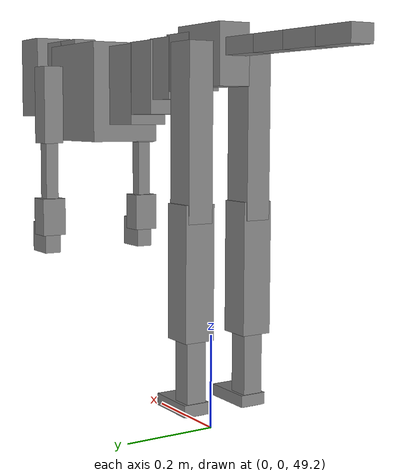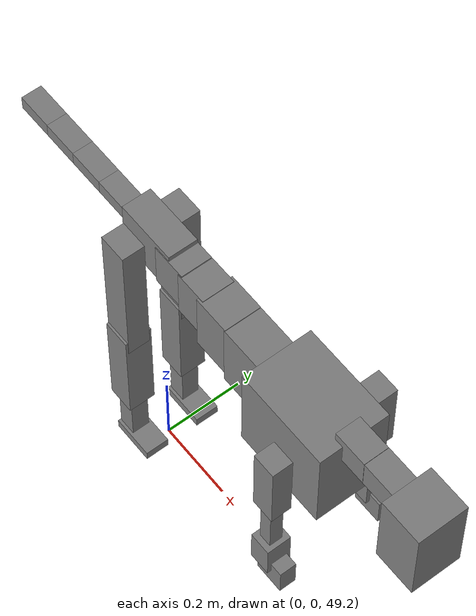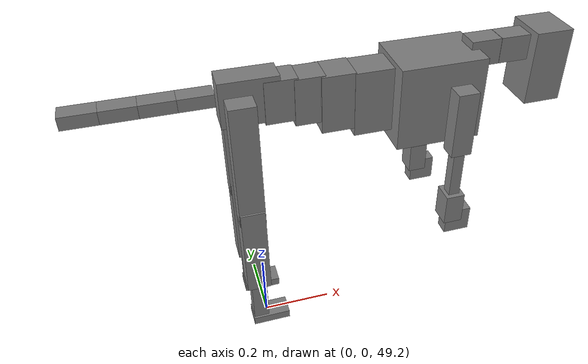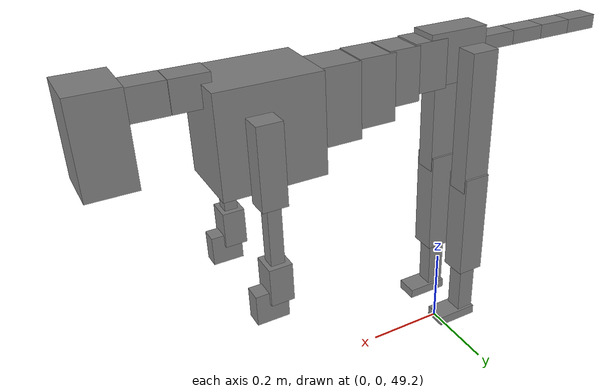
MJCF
<mujoco model="dog">

    <default>
        <joint armature="0.02" stiffness="1" damping="0.2" limited="true"/>
        <geom condim="3" friction="1 0.05 0.05" margin="0.01"/>
        <motor ctrllimited="true" ctrlrange="-1.0 1.0" forcelimited="true" gear="50"/>
    </default>

    <compiler inertiafromgeom="true" angle="radian"/>

    <option timestep="0.016" iterations="50" tolerance="1e-10" solver="Newton" jacobian="dense" cone="pyramidal"/>

    <size nconmax="20000" njmax="60000" nstack="5000000"/>
    <visual>
        <map force="0.1" zfar="30"/>
        <rgba haze="0.15 0.25 0.35 1"/>
        <quality shadowsize="2048"/>
        <global offwidth="800" offheight="800"/>
    </visual>

    <asset>
        <texture type="skybox" builtin="gradient" rgb1="0.3 0.5 0.7" rgb2="0 0 0" width="512" height="512"/>
        <texture name="texplane" type="2d" builtin="checker" rgb1=".2 .3 .4" rgb2=".1 0.15 0.2" width="512" height="512"
                 mark="cross" markrgb=".8 .8 .8"/>
        <texture name="texgeom" type="cube" builtin="flat" mark="cross" width="127" height="1278" rgb1="0.8 0.6 0.4"
                 rgb2="0.8 0.6 0.4" markrgb="1 1 1" random="0.01"/>

        <material name="matplane" reflectance="0.3" texture="texplane" texrepeat="1 1" texuniform="true"/>
        <material name="matgeom" texture="texgeom" texuniform="true" rgba="0.8 0.6 .4 1"/>
    </asset>

    <worldbody>
        <geom name="floor" pos="0 0 0" size="0 0 .25" type="plane" material="matplane" condim="3"/>

        <light directional="false" diffuse=".2 .2 .2" specular="0 0 0" pos="0 0 5" dir="0 0 -1" castshadow="false"/>
        <light mode="targetbodycom" target="torso" directional="false" diffuse=".8 .8 .8" specular="0.3 0.3 0.3"
               pos="0 0 4.0" dir="0 0 -1"/>

        <body name="root" pos="0 0 50">
            <freejoint name="root_1"/>
            <geom type="box" pos="0 0 -0.02" size="0.0774  0.0358  0.063" density="2030"/>

            <body name="spine1" pos="0.054 0 0">
                <joint name="spine1_y" axis="0 1 0" range="0 0.7" limited="true"/>
                <geom type="box" pos="0.02375 0 -0.03" size="0.04375  0.0375  0.05985" density="2030"/>

                <body name="spine2" pos="0.0612 0 0">
                    <joint name="spine2_y" axis="0 1 0" range="-0.15 0.15" limited="true"/>
                    <geom type="box" pos="0.03555  0  -0.04" size="0.04055  0.039  0.06615" density="2030"/>

                    <body name="spine3" pos="0.0730 0 0">
                        <joint name="spine3_y" axis="0 1 0" range="-0.15 0.15" limited="true"/>
                        <geom type="box" pos="0.03555  0  -0.057" size="0.04555  0.0445  0.081" density="2030"/>

                        <body name="spine4" pos="0.0780 0 0">
                            <joint name="spine4_y" axis="0 1 0" range="-0.15 0.15" limited="true"/>
                            <geom type="box" pos="0.05265  0  -0.07" size="0.05265  0.045  0.09135" density="2030"/>

                            <body name="torso" pos="0.1082 0 0">
                                <joint name="torso_y" axis="0 1 0" range="-0.15 0.15" limited="true"/>
                                <geom type="box" pos="0.11925  0  -0.085" size="0.11925  0.085  0.11745"
                                      density="2030"/>

                                <body name="neck1" pos="0.2160  0   0.0180">
                                    <joint name="neck1_y" axis="0 1 0" range="-1.2  -1" limited="true"/>
                                    <geom type="box" pos="0.0423  0  0" size="0.0423  0.03  0.036" density="2325"/>

                                    <body name="neck2" pos="0.0853  0  0">
                                        <joint name="neck2_y" axis="0 1 0" range="0.1  0" limited="true"/>
                                        <geom type="box" pos="0.0423  0  0" size="0.0423  0.03  0.036" density="2325"/>

                                        <body name="head" pos="0.0853  0  0">
                                            <joint name="head_y" axis="0 1 0" range="-0.3  -0.2" limited="true"/>
                                            <geom type="box" pos="0.0531  0  -0.055" size="0.0531  0.06  0.1044"
                                                  density="4030"/>

                                        </body>
                                    </body>
                                </body>

                                <body name="front_shoulder" pos="0.156  0   -0.0480">
                                    <joint name="front_shoulder_y" axis="0 1 0" range="-1 1.5" limited="true"/>
                                    <geom type="box" pos="0 0.13 -0.0667" size="0.0288  0.0246  0.0934" density="1158"/>
                                    <geom type="box" pos="0 -0.13 -0.0667" size="0.0288  0.0246  0.0934"
                                          density="1158"/>

                                    <body name="front_elbow" pos="0  0  -0.1334">
                                        <joint name="front_elbow_y" axis="0 1 0" range="-2 0" limited="true"/>
                                        <geom type="box" pos="0 0.13 -0.0881" size="0.0157  0.0160  0.0881"
                                              density="1081"/>
                                        <geom type="box" pos="0 -0.13 -0.0881" size="0.0157  0.0160  0.0881"
                                              density="1081"/>

                                        <body name="front_wrist" pos="0  0  -0.1762">
                                            <joint name="front_wrist_y" axis="0 1 0" range="-0.2 0" limited="true"/>
                                            <geom type="box" pos="0 0.13 -0.0320" size="0.0266  0.0296  0.0451"
                                                  density="1664"/>
                                            <geom type="box" pos="0 -0.13 -0.0320" size="0.0266  0.0296  0.0451"
                                                  density="1664"/>

                                            <body name="front_finger_end" pos="0  0  -0.0639">
                                                <joint name="front_finger_y" axis="0 1 0" range="-0.4 1"
                                                       limited="true"/>
                                                <geom type="box" pos="0.0202  0.13  -0.0216"
                                                      size="0.0371  0.0202  0.0366" density="1515"/>
                                                <geom type="box" pos="0.0202  -0.13  -0.0216"
                                                      size="0.0371  0.0202  0.0366" density="1515"/>

                                            </body>

                                        </body>
                                    </body>
                                </body>

                            </body>
                        </body>
                    </body>
                </body>
            </body>

            <body name="back_hip" pos="-0.03 0 -0.018">
                <joint name="back_hip_y" axis="0 1 0" range="-1.5 0.3" limited="true"/>
                <geom type="box" pos="0 0.07 -0.1571" size="0.0352  0.0276  0.1799" density="1154"/>
                <geom type="box" pos="0 -0.07 -0.1571" size="0.0352  0.0276  0.1799" density="1154"/>

                <body name="back_knee" pos="0  0  -0.3143">
                    <joint name="back_knee_y" axis="0 1 0" range="0 2.8" limited="true"/>
                    <geom type="box" pos="0 0.07 -0.1231" size="0.0338  0.0333  0.1387" density="1227"/>
                    <geom type="box" pos="0 -0.07 -0.1231" size="0.0338  0.0333  0.1387" density="1227"/>

                    <body name="back_ankle" pos="0  0  -0.2463">
                        <joint name="back_ankle_y" axis="0 1 0" range="-2.2 0" limited="true"/>
                        <geom type="box" pos="0 0.07 -0.0796" size="0.0221  0.0221  0.0908" density="1284"/>
                        <geom type="box" pos="0 -0.07 -0.0796" size="0.0221  0.0221  0.0908" density="1284"/>

                        <body name="back_toe_end" pos="0  0  -0.1591">
                            <joint name="back_toe_y" axis="0 1 0" range="-0.4 1" limited="true"/>
                            <geom type="box" pos="0.0293  0.07  0.0025" size="0.0538  0.0293  0.0125" density="1515"/>
                            <geom type="box" pos="0.0293  -0.07  0.0025" size="0.0538  0.0293  0.0125" density="1515"/>

                        </body>
                    </body>
                </body>
            </body>

            <body name="tail1" pos="-0.074 0 -0.006">
                <joint name="tail1_y" axis="0 1 0" range="-0.2 0.2" limited="true"/>
                <geom type="box" pos="-0.0536  0  0" size="0.045  0.025  0.0175" density="1587"/>

                <body name="tail2" pos="-0.09 0 0">
                    <joint name="tail2_y" axis="0 1 0" range="-0.2 0.2" limited="true"/>
                    <geom type="box" pos="-0.0536  0  0" size="0.045  0.025  0.0175" density="1587"/>

                    <body name="tail3" pos="-0.09 0 0">
                        <joint name="tail3_y" axis="0 1 0" range="-0.2 0.2" limited="true"/>
                        <geom type="box" pos="-0.0536  0  0" size="0.045  0.025  0.0175" density="1587"/>

                        <body name="tail4" pos="-0.09 0 0">
                            <joint name="tail4_y" axis="0 1 0" range="-0.2 0.2" limited="true"/>
                            <geom type="box" pos="-0.0536  0  0" size="0.045  0.025  0.0175" density="1587"/>

                        </body>
                    </body>
                </body>
            </body>
        </body>
    </worldbody>

    <actuator>
        <motor joint="spine1_y" forcerange="-150 150     "/>
        <motor joint="spine2_y" forcerange="-150 150     "/>
        <motor joint="spine3_y" forcerange="-150 150     "/>
        <motor joint="spine4_y" forcerange="-150 150     "/>
        <motor joint="torso_y" forcerange="-150 150     "/>
        <motor joint="neck1_y" forcerange="-100 100       "/>
        <motor joint="neck2_y" forcerange="-100 100       "/>
        <motor joint="head_y" forcerange="-150 150       "/>
        <motor joint="front_shoulder_y" forcerange="-129.26 134.70"/>
        <motor joint="front_elbow_y" forcerange="-107.60 108.80"/>
        <motor joint="front_wrist_y" forcerange="-105.19 131.51"/>
        <motor joint="front_finger_y" forcerange="-44.81 23.00"/>
        <motor joint="back_hip_y" forcerange="-320.39 247.67"/>
        <motor joint="back_knee_y" forcerange="-377.64 306.48"/>
        <motor joint="back_angle_y" forcerange="-132.99 120.33"/>
        <motor joint="back_toe_y" forcerange="-38.71 116.07"/>
        <motor joint="tail1_y" forcerange="-50 50     "/>
        <motor joint="tail2_y" forcerange="-50 50     "/>
        <motor joint="tail3_y" forcerange="-50 50     "/>
        <motor joint="tail4_y" forcerange="-50 50     "/>
    </actuator>
</mujoco>
